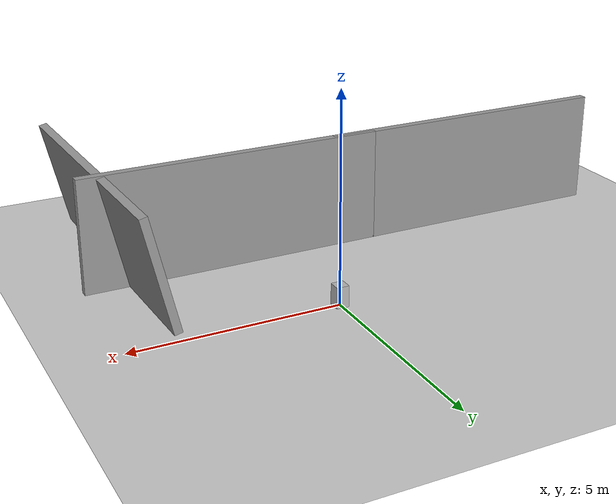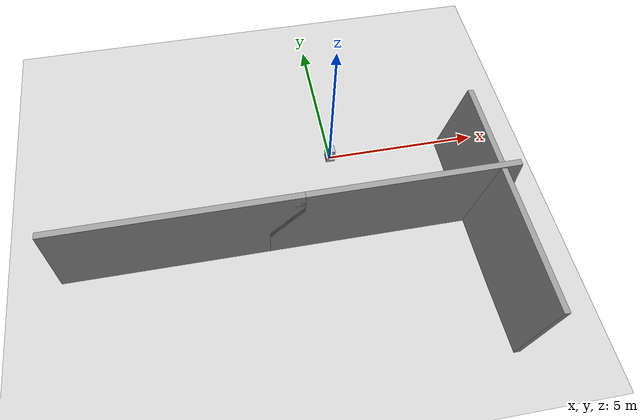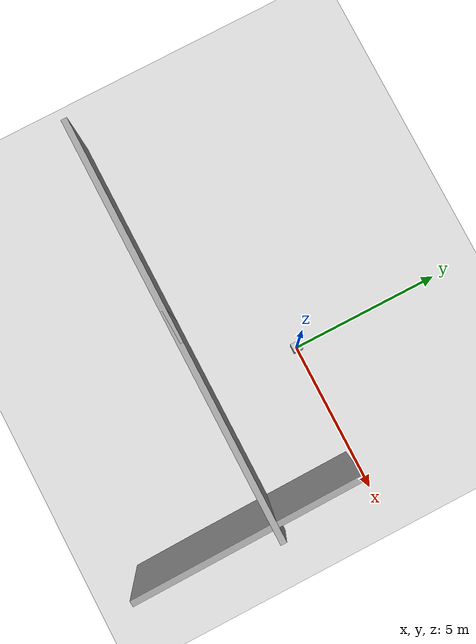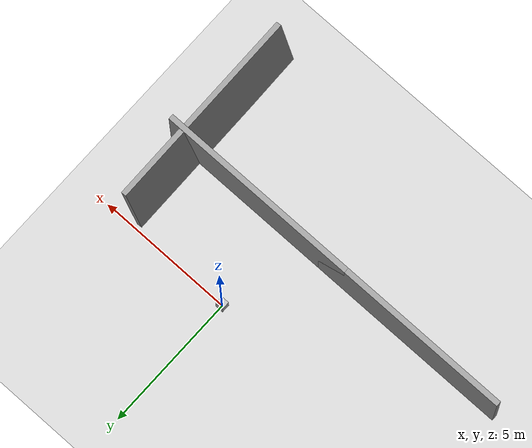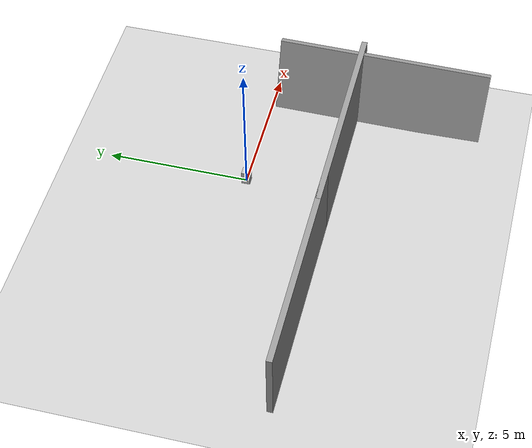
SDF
<sdf version="1.6">
 <world name="default">
  <light name="sun" type="directional">
   <pose>0 0 10 0 -0 0</pose>
   <diffuse>0.8 0.8 0.8 1</diffuse>
   <specular>0.2 0.2 0.2 1</specular>
   <attenuation>
    <range>1000</range>
    <constant>0.9</constant>
    <linear>0.01</linear>
    <quadratic>0.001</quadratic>
   </attenuation>
   <direction>-0.5 0.1 -0.9</direction>
  </light>
  <model name="ground_plane">
   <static>1</static>
   <link name="link">
    <collision name="collision">
     <geometry><plane><normal>0 0 1</normal><size>100 100</size></plane></geometry>
     <surface>
      <contact><collide_bitmask>65535</collide_bitmask></contact>
      <friction><ode><mu>100</mu><mu2>50</mu2></ode></friction>
     </surface>
    </collision>
    <visual name="visual">
     <cast_shadows>0</cast_shadows>
     <geometry><plane><normal>0 0 1</normal><size>100 100</size></plane></geometry>
     <material>
      <script><uri>file://media/materials/scripts/gazebo.material</uri><name>Gazebo/Grey</name></script>
     </material>
    </visual>
   </link>
  </model>
  <physics name="default_physics" default="0" type="ode">
   <real_time_update_rate>1000</real_time_update_rate>
   <max_step_size>0.001</max_step_size>
   <real_time_factor>1</real_time_factor>
   <ode>
    <solver>
     <type>quick</type>
     <iters>150</iters>
     <precon_iters>0</precon_iters>
     <sor>1.4</sor>
     <use_dynamic_moi_rescaling>1</use_dynamic_moi_rescaling>
    </solver>
    <constraints>
     <cfm>1e-05</cfm>
     <erp>0.2</erp>
     <contact_max_correcting_vel>2000</contact_max_correcting_vel>
     <contact_surface_layer>0.01</contact_surface_layer>
    </constraints>
   </ode>
  </physics>
  <scene><ambient>0.4 0.4 0.4 1</ambient><background>0.7 0.7 0.7 1</background><shadows>1</shadows></scene>
  <gravity>0 0 -9.8</gravity>
  <magnetic_field>6e-06 2.3e-05 -4.2e-05</magnetic_field>
  <atmosphere type="adiabatic"/>
  <audio><device>default</device></audio>
  <spherical_coordinates>
   <surface_model>EARTH_WGS84</surface_model>
   <latitude_deg>0</latitude_deg>
   <longitude_deg>0</longitude_deg>
   <elevation>0</elevation>
   <heading_deg>0</heading_deg>
  </spherical_coordinates>
  <model name="grey_wall">
   <static>1</static>
   <link name="link">
    <pose>0 0 1.4 0 -0 0</pose>
    <collision name="collision"><geometry><box><size>7.5 0.2 2.8</size></box></geometry></collision>
    <visual name="visual">
     <cast_shadows>0</cast_shadows>
     <geometry><box><size>7.5 0.2 2.8</size></box></geometry>
     <material>
      <script>
       <uri>model://grey_wall/materials/scripts</uri>
       <uri>model://grey_wall/materials/textures</uri>
       <name>vrc/grey_wall</name>
      </script>
     </material>
    </visual>
   </link>
   <pose>1.2 -3.1 0 0 -0 0</pose>
  </model>
  <model name="grey_wall_0">
   <static>1</static>
   <link name="link">
    <pose>0 0 1.4 0 -0 0</pose>
    <collision name="collision"><geometry><box><size>7.5 0.2 2.8</size></box></geometry></collision>
    <visual name="visual">
     <cast_shadows>0</cast_shadows>
     <geometry><box><size>7.5 0.2 2.8</size></box></geometry>
     <material>
      <script>
       <uri>model://grey_wall/materials/scripts</uri>
       <uri>model://grey_wall/materials/textures</uri>
       <name>vrc/grey_wall</name>
      </script>
     </material>
    </visual>
   </link>
   <pose>-5.21299 -3.1 0 0 -0 0</pose>
  </model>
  <model name="grey_wall_1">
   <static>1</static>
   <link name="link">
    <pose>0 0 1.4 0 -0 0</pose>
    <collision name="collision"><geometry><box><size>7.5 0.2 2.8</size></box></geometry></collision>
    <visual name="visual">
     <cast_shadows>0</cast_shadows>
     <geometry><box><size>7.5 0.2 2.8</size></box></geometry>
     <material>
      <script>
       <uri>model://grey_wall/materials/scripts</uri>
       <uri>model://grey_wall/materials/textures</uri>
       <name>vrc/grey_wall</name>
      </script>
     </material>
    </visual>
   </link>
   <pose>3.8 -3.9 0 0.21761 -0.024752 1.58353</pose>
  </model>
  <model name="obstacle1_box">
   <link name="obstacle1_box_link1">
    <inertial>
     <mass>1</mass>
     <inertia><ixx>0.091</ixx><ixy>0</ixy><ixz>0</ixz><iyy>0.091</iyy><iyz>0</iyz><izz>0.015</izz></inertia>
    </inertial>
    <collision name="obstacle1_box_collision"><geometry><box><size>0.3 0.3 1</size></box></geometry></collision>
    <visual name="obstacle1_box_visual">
     <geometry>
      <box><size>0.3 0.3 1</size></box>
      <material name="blue"><color rgba="0 0 .8 1"/></material>
     </geometry>
    </visual>
   </link>
   <plugin name="push_animate" filename="libanimated_box.so"/>
  </model>
  <model name="obstacle2_box">
   <link name="obstacle2_box_link1">
    <inertial>
     <mass>1</mass>
     <inertia><ixx>0.091</ixx><ixy>0</ixy><ixz>0</ixz><iyy>0.091</iyy><iyz>0</iyz><izz>0.015</izz></inertia>
    </inertial>
    <collision name="obstacle2_box_collision"><geometry><box><size>0.3 0.3 1</size></box></geometry></collision>
    <visual name="obstacle2_box_visual">
     <geometry>
      <box><size>0.3 0.3 1</size></box>
      <material name="blue"><color rgba="0 0 .8 1"/></material>
     </geometry>
    </visual>
   </link>
   <plugin name="push_animate" filename="libanimated_box.so"/>
  </model>
  <model name="obstacle3_box">
   <link name="obstacle3_box_link1">
    <inertial>
     <mass>1</mass>
     <inertia><ixx>0.091</ixx><ixy>0</ixy><ixz>0</ixz><iyy>0.091</iyy><iyz>0</iyz><izz>0.015</izz></inertia>
    </inertial>
    <collision name="obstacle3_box_collision"><geometry><box><size>0.3 0.3 1</size></box></geometry></collision>
    <visual name="obstacle3_box_visual">
     <geometry>
      <box><size>0.3 0.3 1</size></box>
      <material name="blue"><color rgba="0 0 .8 1"/></material>
     </geometry>
    </visual>
   </link>
   <plugin name="push_animate" filename="libanimated_box.so"/>
  </model>
  <model name="obstacle4_box">
   <link name="obstacle4_box_link1">
    <inertial>
     <mass>1</mass>
     <inertia><ixx>0.091</ixx><ixy>0</ixy><ixz>0</ixz><iyy>0.091</iyy><iyz>0</iyz><izz>0.015</izz></inertia>
    </inertial>
    <collision name="obstacle4_box_collision"><geometry><box><size>0.3 0.3 1</size></box></geometry></collision>
    <visual name="obstacle4_box_visual">
     <geometry>
      <box><size>0.3 0.3 1</size></box>
      <material name="blue"><color rgba="0 0 .8 1"/></material>
     </geometry>
    </visual>
   </link>
   <plugin name="push_animate" filename="libanimated_box.so"/>
  </model>
  <model name="obstacle5_box">
   <link name="obstacle5_box_link1">
    <inertial>
     <mass>1</mass>
     <inertia><ixx>0.091</ixx><ixy>0</ixy><ixz>0</ixz><iyy>0.091</iyy><iyz>0</iyz><izz>0.015</izz></inertia>
    </inertial>
    <collision name="obstacle5_box_collision"><geometry><box><size>0.3 0.3 1</size></box></geometry></collision>
    <visual name="obstacle5_box_visual">
     <geometry>
      <box><size>0.3 0.3 1</size></box>
      <material name="blue"><color rgba="0 0 .8 1"/></material>
     </geometry>
    </visual>
   </link>
   <plugin name="push_animate" filename="libanimated_box.so"/>
  </model>
  <model name="obstacle6_box">
   <link name="obstacle6_box_link1">
    <inertial>
     <mass>1</mass>
     <inertia><ixx>0.091</ixx><ixy>0</ixy><ixz>0</ixz><iyy>0.091</iyy><iyz>0</iyz><izz>0.015</izz></inertia>
    </inertial>
    <collision name="obstacle6_box_collision"><geometry><box><size>0.3 0.3 1</size></box></geometry></collision>
    <visual name="obstacle6_box_visual">
     <geometry>
      <box><size>0.3 0.3 1</size></box>
      <material name="blue"><color rgba="0 0 .8 1"/></material>
     </geometry>
    </visual>
   </link>
   <plugin name="push_animate" filename="libanimated_box.so"/>
  </model>
  <model name="obstacle7_box">
   <link name="obstacle7_box_link1">
    <inertial>
     <mass>1</mass>
     <inertia><ixx>0.091</ixx><ixy>0</ixy><ixz>0</ixz><iyy>0.091</iyy><iyz>0</iyz><izz>0.015</izz></inertia>
    </inertial>
    <collision name="obstacle7_box_collision"><geometry><box><size>0.3 0.3 1</size></box></geometry></collision>
    <visual name="obstacle7_box_visual">
     <geometry>
      <box><size>0.3 0.3 1</size></box>
      <material name="blue"><color rgba="0 0 .8 1"/></material>
     </geometry>
    </visual>
   </link>
   <plugin name="push_animate" filename="libanimated_box.so"/>
  </model>
 </world>
</sdf>
